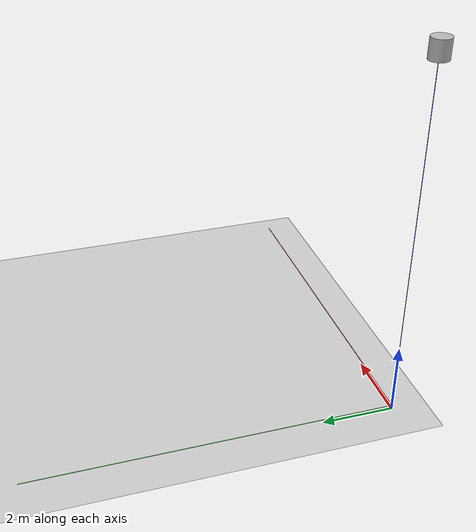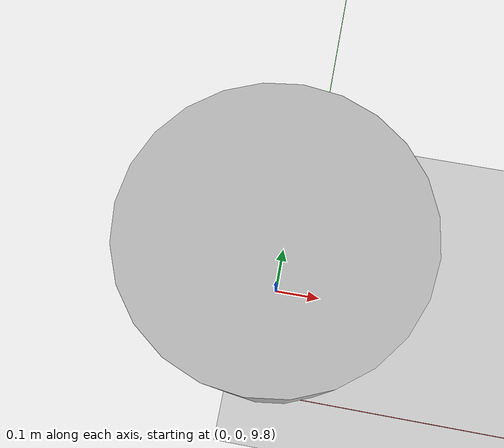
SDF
<sdf version="1.9">
 <world name="ardupilot_world">
  <physics name="1ms" type="ignore">
   <max_step_size>0.001</max_step_size>
   <real_time_factor>1.0</real_time_factor>
  </physics>
  <plugin filename="gz-sim-physics-system" name="gz::sim::systems::Physics"/>
  <plugin filename="gz-sim-sensors-system" name="gz::sim::systems::Sensors">
   <render_engine>ogre2</render_engine>
  </plugin>
  <plugin filename="gz-sim-user-commands-system" name="gz::sim::systems::UserCommands"/>
  <plugin filename="gz-sim-scene-broadcaster-system" name="gz::sim::systems::SceneBroadcaster"/>
  <plugin filename="gz-sim-imu-system" name="gz::sim::systems::Imu"/>
  <plugin filename="gz-sim-navsat-system" name="gz::sim::systems::NavSat"/>
  <scene><ambient>1.0 1.0 1.0</ambient><background>0.8 0.8 0.8</background></scene>
  <spherical_coordinates>
   <latitude_deg>-35.363262</latitude_deg>
   <longitude_deg>149.165237</longitude_deg>
   <elevation>584</elevation>
   <heading_deg>0</heading_deg>
   <surface_model>EARTH_WGS84</surface_model>
  </spherical_coordinates>
  <light type="directional" name="sun">
   <pose>0 0 10 0 0 0</pose>
   <diffuse>0.8 0.8 0.8 1</diffuse>
   <specular>0.8 0.8 0.8 1</specular>
   <attenuation>
    <range>1000</range>
    <constant>0.9</constant>
    <linear>0.01</linear>
    <quadratic>0.001</quadratic>
   </attenuation>
   <direction>-0.5 0.1 -0.9</direction>
  </light>
  <model name="axes">
   <static>1</static>
   <link name="link">
    <visual name="r">
     <cast_shadows>0</cast_shadows>
     <pose>5 0 0.1 0 0 0</pose>
     <geometry><box><size>10 0.01 0.01</size></box></geometry>
     <material>
      <ambient>1 0 0 0.8</ambient>
      <diffuse>1 0 0 0.8</diffuse>
      <emissive>1 0 0 0.8</emissive>
      <specular>0.5 0.5 0.5 0.8</specular>
     </material>
    </visual>
    <visual name="g">
     <cast_shadows>0</cast_shadows>
     <pose>0 5 0.1 0 0 0</pose>
     <geometry><box><size>0.01 10 0.01</size></box></geometry>
     <material>
      <ambient>0 1 0 0.8</ambient>
      <diffuse>0 1 0 0.8</diffuse>
      <emissive>0 1 0 0.8</emissive>
      <specular>0.5 0.5 0.5 0.8</specular>
     </material>
    </visual>
    <visual name="b">
     <cast_shadows>0</cast_shadows>
     <pose>0 0 5.1 0 0 0</pose>
     <geometry><box><size>0.01 0.01 10</size></box></geometry>
     <material>
      <ambient>0 0 1 0.8</ambient>
      <diffuse>0 0 1 0.8</diffuse>
      <emissive>0 0 1 0.8</emissive>
      <specular>0.5 0.5 0.5 0.8</specular>
     </material>
    </visual>
    <sensor name="navsat_sensor" type="navsat"><always_on>1</always_on><update_rate>1</update_rate></sensor>
   </link>
  </model>
  <model name="ground_plane">
   <static>true</static>
   <link name="link">
    <collision name="collision">
     <geometry><plane><normal>0 0 1</normal><size>1 1</size></plane></geometry>
    </collision>
    <visual name="visual">
     <geometry><plane><normal>0 0 1</normal><size>100 100</size></plane></geometry>
     <material>
      <ambient>0.8 0.8 0.8 1</ambient>
      <diffuse>0.8 0.8 0.8 1</diffuse>
      <specular>0.8 0.8 0.8 1</specular>
     </material>
    </visual>
    <inertial>
     <mass>1</mass>
     <inertia><ixx>1</ixx><ixy>0</ixy><ixz>0</ixz><iyy>1</iyy><iyz>0</iyz><izz>1</izz></inertia>
    </inertial>
   </link>
  </model>
  <model name="simple_cylinder">
   <pose>0 0 10 0 0 0</pose>
   <link name="cylinder_link">
    <visual name="visual">
     <geometry><cylinder><radius>0.25</radius><length>0.5</length></cylinder></geometry>
    </visual>
    <inertial><mass>0</mass></inertial>
   </link>
  </model>
 </world>
</sdf>
